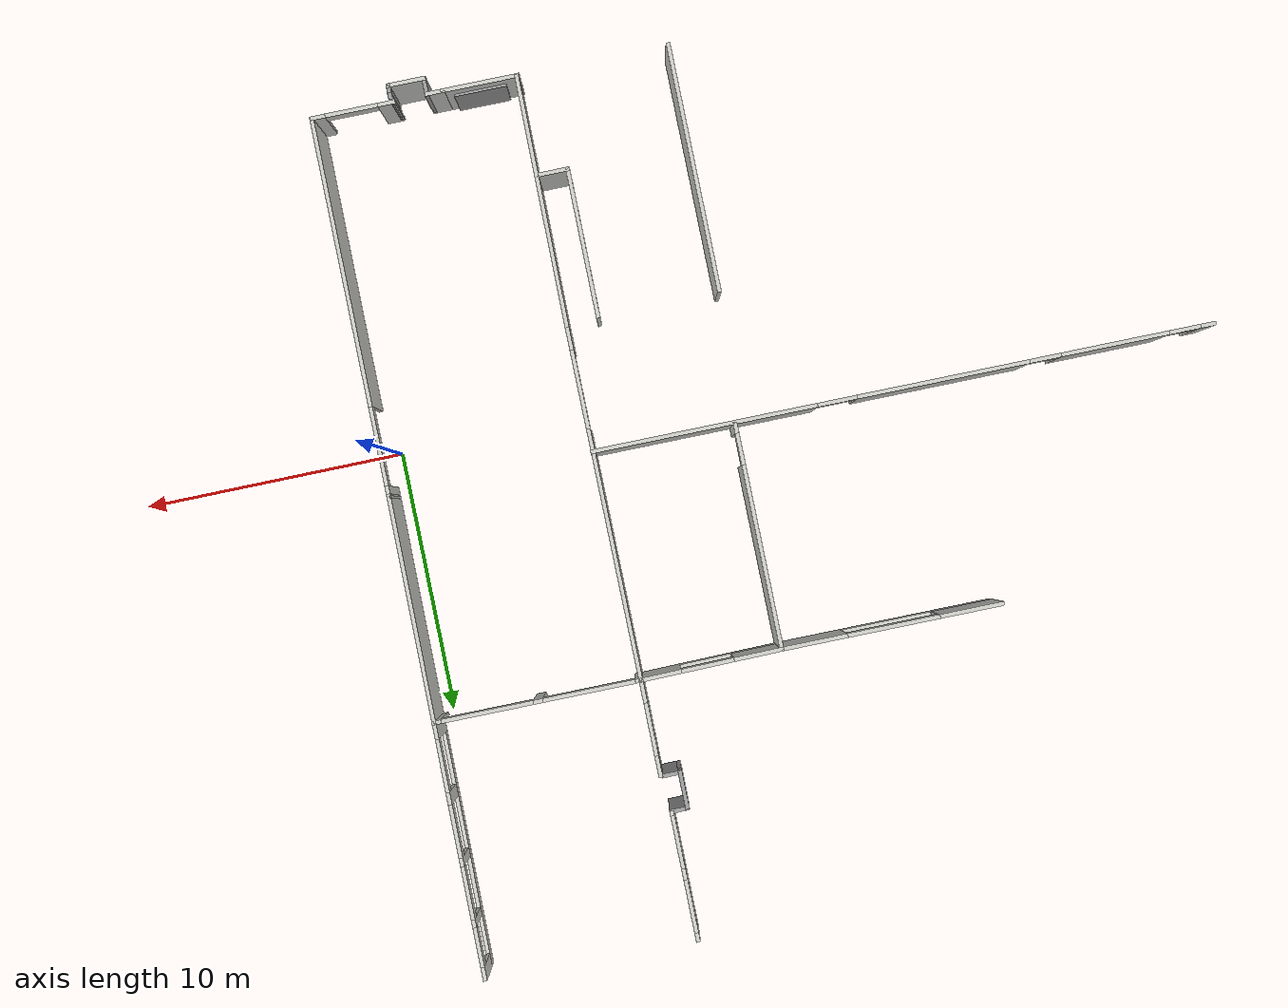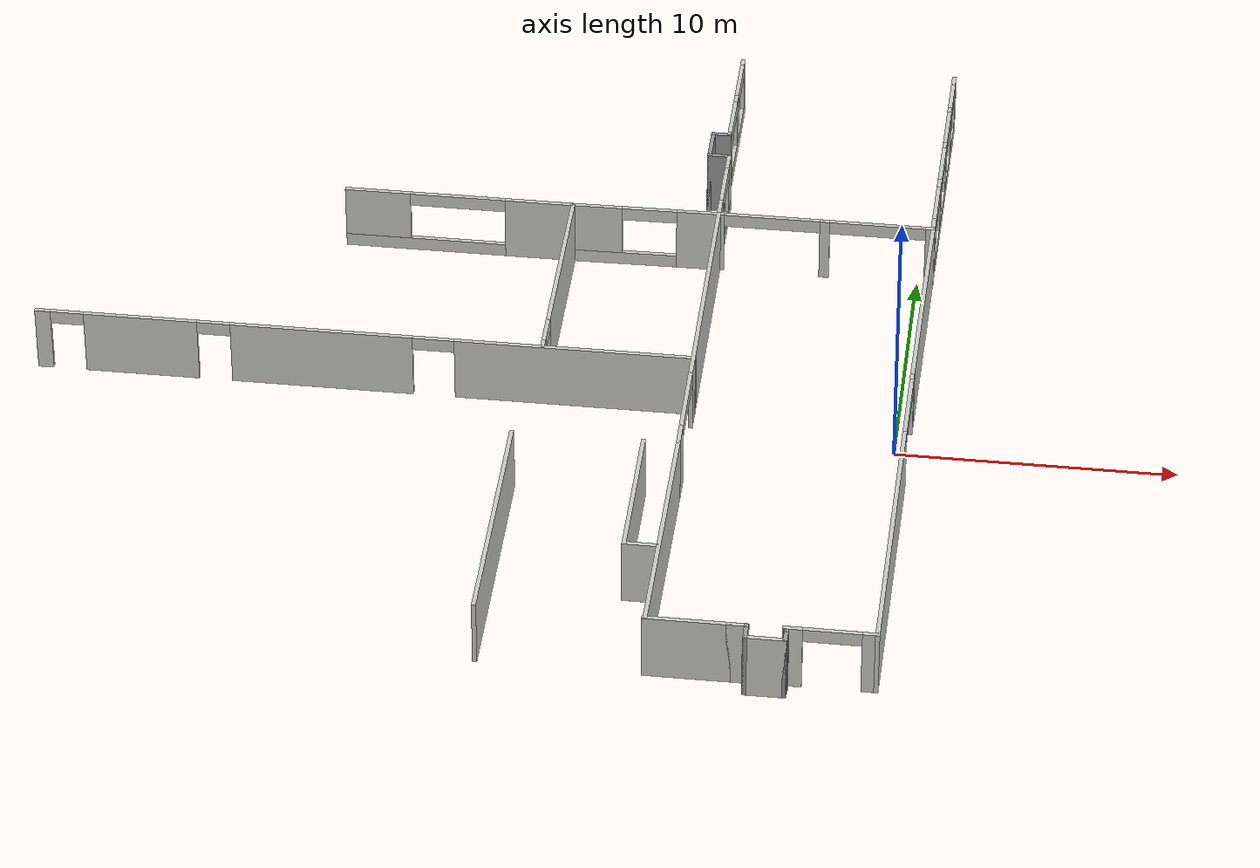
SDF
<sdf version="1.7">
 <model name="cps_lab_layout">
  <pose>-18.5957 3.28943 0 0 -0 0</pose>
  <link name="Door_24">
   <collision name="Door_24_Collision">
    <geometry><box><size>2 0.17 2</size></box></geometry>
    <pose>0 0 1 0 -0 0</pose>
   </collision>
   <visual name="Door_24_Visual">
    <pose>0 0 1 0 -0 0</pose>
    <geometry><box><size>2 0.17 2</size></box></geometry>
    <material>
     <script><uri>file://media/materials/scripts/gazebo.material</uri><name>Gazebo/Grey</name></script>
    </material>
   </visual>
   <pose>12.706 -16.0168 0 0 -0 0</pose>
  </link>
  <link name="Wall_182">
   <collision name="Wall_182_Collision">
    <geometry><box><size>5.75 0.15 2.5</size></box></geometry>
    <pose>0 0 1.25 0 -0 0</pose>
   </collision>
   <visual name="Wall_182_Visual">
    <pose>0 0 1.25 0 -0 0</pose>
    <geometry><box><size>5.75 0.15 2.5</size></box></geometry>
    <material>
     <script><uri>file://media/materials/scripts/gazebo.material</uri><name>Gazebo/CeilingTiled</name></script>
     <ambient>0.760784 0.662745 0.627451 1</ambient>
    </material>
    <meta><layer>0</layer></meta>
   </visual>
   <pose>10.0887 -9.49757 0 0 -0 -1.5708</pose>
  </link>
  <link name="Wall_183">
   <collision name="Wall_183_Collision">
    <geometry><box><size>1.25 0.15 2.5</size></box></geometry>
    <pose>0 0 1.25 0 -0 0</pose>
   </collision>
   <visual name="Wall_183_Visual">
    <pose>0 0 1.25 0 -0 0</pose>
    <geometry><box><size>1.25 0.15 2.5</size></box></geometry>
    <material>
     <script><uri>file://media/materials/scripts/gazebo.material</uri><name>Gazebo/CeilingTiled</name></script>
     <ambient>1 1 1 1</ambient>
    </material>
    <meta><layer>0</layer></meta>
   </visual>
   <pose>10.6387 -12.2976 0 0 -0 0</pose>
  </link>
  <link name="Wall_187">
   <pose>11.2551 8.67058 0 0 -0 1.5708</pose>
   <visual name="Wall_187_Visual_0">
    <pose>-1.40582 0 1.25 0 -0 0</pose>
    <geometry><box><size>0.938352 0.15 2.5</size></box></geometry>
    <material>
     <script><uri>file://media/materials/scripts/gazebo.material</uri><name>Gazebo/CeilingTiled</name></script>
     <ambient>0.760784 0.662745 0.627451 1</ambient>
    </material>
    <meta><layer>0</layer></meta>
   </visual>
   <collision name="Wall_187_Collision_0">
    <geometry><box><size>0.938352 0.15 2.5</size></box></geometry>
    <pose>-1.40582 0 1.25 0 -0 0</pose>
   </collision>
   <visual name="Wall_187_Visual_1">
    <pose>0.469176 0 0.25 0 -0 0</pose>
    <geometry><box><size>2.81165 0.15 0.5</size></box></geometry>
    <material>
     <script><uri>file://media/materials/scripts/gazebo.material</uri><name>Gazebo/CeilingTiled</name></script>
     <ambient>0.760784 0.662745 0.627451 1</ambient>
    </material>
    <meta><layer>0</layer></meta>
   </visual>
   <collision name="Wall_187_Collision_1">
    <geometry><box><size>2.81165 0.15 0.5</size></box></geometry>
    <pose>0.469176 0 0.25 0 -0 0</pose>
   </collision>
   <visual name="Wall_187_Visual_2">
    <pose>1.46918 0 1.5 0 -0 0</pose>
    <geometry><box><size>0.811648 0.15 2</size></box></geometry>
    <material>
     <script><uri>file://media/materials/scripts/gazebo.material</uri><name>Gazebo/CeilingTiled</name></script>
     <ambient>0.760784 0.662745 0.627451 1</ambient>
    </material>
    <meta><layer>0</layer></meta>
   </visual>
   <collision name="Wall_187_Collision_2">
    <geometry><box><size>0.811648 0.15 2</size></box></geometry>
    <pose>1.46918 0 1.5 0 -0 0</pose>
   </collision>
   <visual name="Wall_187_Visual_3">
    <pose>0.063352 0 2.25 0 -0 0</pose>
    <geometry><box><size>2 0.15 0.5</size></box></geometry>
    <material>
     <script><uri>file://media/materials/scripts/gazebo.material</uri><name>Gazebo/CeilingTiled</name></script>
     <ambient>0.760784 0.662745 0.627451 1</ambient>
    </material>
    <meta><layer>0</layer></meta>
   </visual>
   <collision name="Wall_187_Collision_3">
    <geometry><box><size>2 0.15 0.5</size></box></geometry>
    <pose>0.063352 0 2.25 0 -0 0</pose>
   </collision>
  </link>
  <link name="Wall_189">
   <pose>19.097 7.40162 0 0 -0 1.56605</pose>
   <visual name="Wall_189_Visual_0">
    <pose>-4.54614 0 1.25 0 -0 0</pose>
    <geometry><box><size>9.29104 0.15 2.5</size></box></geometry>
    <material>
     <script><uri>file://media/materials/scripts/gazebo.material</uri><name>Gazebo/CeilingTiled</name></script>
     <ambient>0.760784 0.662745 0.627451 1</ambient>
    </material>
    <meta><layer>0</layer></meta>
   </visual>
   <collision name="Wall_189_Collision_0">
    <geometry><box><size>9.29104 0.15 2.5</size></box></geometry>
    <pose>-4.54614 0 1.25 0 -0 0</pose>
   </collision>
   <visual name="Wall_189_Visual_1">
    <pose>4.64552 0 0.25 0 -0 0</pose>
    <geometry><box><size>9.09228 0.15 0.5</size></box></geometry>
    <material>
     <script><uri>file://media/materials/scripts/gazebo.material</uri><name>Gazebo/CeilingTiled</name></script>
     <ambient>0.760784 0.662745 0.627451 1</ambient>
    </material>
    <meta><layer>0</layer></meta>
   </visual>
   <collision name="Wall_189_Collision_1">
    <geometry><box><size>9.09228 0.15 0.5</size></box></geometry>
    <pose>4.64552 0 0.25 0 -0 0</pose>
   </collision>
   <visual name="Wall_189_Visual_2">
    <pose>2.33247 0 1.5 0 -0 0</pose>
    <geometry><box><size>0.466181 0.15 2</size></box></geometry>
    <material>
     <script><uri>file://media/materials/scripts/gazebo.material</uri><name>Gazebo/CeilingTiled</name></script>
     <ambient>0.760784 0.662745 0.627451 1</ambient>
    </material>
    <meta><layer>0</layer></meta>
   </visual>
   <collision name="Wall_189_Collision_2">
    <geometry><box><size>0.466181 0.15 2</size></box></geometry>
    <pose>2.33247 0 1.5 0 -0 0</pose>
   </collision>
   <visual name="Wall_189_Visual_3">
    <pose>4.72865 0 1.5 0 -0 0</pose>
    <geometry><box><size>0.32617 0.15 2</size></box></geometry>
    <material>
     <script><uri>file://media/materials/scripts/gazebo.material</uri><name>Gazebo/CeilingTiled</name></script>
     <ambient>0.760784 0.662745 0.627451 1</ambient>
    </material>
    <meta><layer>0</layer></meta>
   </visual>
   <collision name="Wall_189_Collision_3">
    <geometry><box><size>0.32617 0.15 2</size></box></geometry>
    <pose>4.72865 0 1.5 0 -0 0</pose>
   </collision>
   <visual name="Wall_189_Visual_4">
    <pose>7.04047 0 1.5 0 -0 0</pose>
    <geometry><box><size>0.29747 0.15 2</size></box></geometry>
    <material>
     <script><uri>file://media/materials/scripts/gazebo.material</uri><name>Gazebo/CeilingTiled</name></script>
     <ambient>0.760784 0.662745 0.627451 1</ambient>
    </material>
    <meta><layer>0</layer></meta>
   </visual>
   <collision name="Wall_189_Collision_4">
    <geometry><box><size>0.29747 0.15 2</size></box></geometry>
    <pose>7.04047 0 1.5 0 -0 0</pose>
   </collision>
   <visual name="Wall_189_Visual_5">
    <pose>8.94043 0 1.5 0 -0 0</pose>
    <geometry><box><size>0.502461 0.15 2</size></box></geometry>
    <material>
     <script><uri>file://media/materials/scripts/gazebo.material</uri><name>Gazebo/CeilingTiled</name></script>
     <ambient>0.760784 0.662745 0.627451 1</ambient>
    </material>
    <meta><layer>0</layer></meta>
   </visual>
   <collision name="Wall_189_Collision_5">
    <geometry><box><size>0.502461 0.15 2</size></box></geometry>
    <pose>8.94043 0 1.5 0 -0 0</pose>
   </collision>
   <visual name="Wall_189_Visual_6">
    <pose>1.09938 0 2.25 0 -0 0</pose>
    <geometry><box><size>2 0.15 0.5</size></box></geometry>
    <material>
     <script><uri>file://media/materials/scripts/gazebo.material</uri><name>Gazebo/CeilingTiled</name></script>
     <ambient>0.760784 0.662745 0.627451 1</ambient>
    </material>
    <meta><layer>0</layer></meta>
   </visual>
   <collision name="Wall_189_Collision_6">
    <geometry><box><size>2 0.15 0.5</size></box></geometry>
    <pose>1.09938 0 2.25 0 -0 0</pose>
   </collision>
   <visual name="Wall_189_Visual_7">
    <pose>3.56556 0 2.25 0 -0 0</pose>
    <geometry><box><size>2 0.15 0.5</size></box></geometry>
    <material>
     <script><uri>file://media/materials/scripts/gazebo.material</uri><name>Gazebo/CeilingTiled</name></script>
     <ambient>0.760784 0.662745 0.627451 1</ambient>
    </material>
    <meta><layer>0</layer></meta>
   </visual>
   <collision name="Wall_189_Collision_7">
    <geometry><box><size>2 0.15 0.5</size></box></geometry>
    <pose>3.56556 0 2.25 0 -0 0</pose>
   </collision>
   <visual name="Wall_189_Visual_8">
    <pose>5.89173 0 2.25 0 -0 0</pose>
    <geometry><box><size>2 0.15 0.5</size></box></geometry>
    <material>
     <script><uri>file://media/materials/scripts/gazebo.material</uri><name>Gazebo/CeilingTiled</name></script>
     <ambient>0.760784 0.662745 0.627451 1</ambient>
    </material>
    <meta><layer>0</layer></meta>
   </visual>
   <collision name="Wall_189_Collision_8">
    <geometry><box><size>2 0.15 0.5</size></box></geometry>
    <pose>5.89173 0 2.25 0 -0 0</pose>
   </collision>
   <visual name="Wall_189_Visual_9">
    <pose>7.9392 0 2.25 0 -0 0</pose>
    <geometry><box><size>1.5 0.15 0.5</size></box></geometry>
    <material>
     <script><uri>file://media/materials/scripts/gazebo.material</uri><name>Gazebo/CeilingTiled</name></script>
     <ambient>0.760784 0.662745 0.627451 1</ambient>
    </material>
    <meta><layer>0</layer></meta>
   </visual>
   <collision name="Wall_189_Collision_9">
    <geometry><box><size>1.5 0.15 0.5</size></box></geometry>
    <pose>7.9392 0 2.25 0 -0 0</pose>
   </collision>
  </link>
  <link name="Wall_191">
   <pose>-0.494925 -1.79978 0 0 -0 0</pose>
   <visual name="Wall_191_Visual_0">
    <pose>-11.5937 0 1.25 0 -0 0</pose>
    <geometry><box><size>0.562682 0.15 2.5</size></box></geometry>
    <material>
     <script><uri>file://media/materials/scripts/gazebo.material</uri><name>Gazebo/CeilingTiled</name></script>
     <ambient>0.760784 0.662745 0.627451 1</ambient>
    </material>
    <meta><layer>0</layer></meta>
   </visual>
   <collision name="Wall_191_Collision_0">
    <geometry><box><size>0.562682 0.15 2.5</size></box></geometry>
    <pose>-11.5937 0 1.25 0 -0 0</pose>
   </collision>
   <visual name="Wall_191_Visual_1">
    <pose>-8.06045 0 1.25 0 -0 0</pose>
    <geometry><box><size>4.10373 0.15 2.5</size></box></geometry>
    <material>
     <script><uri>file://media/materials/scripts/gazebo.material</uri><name>Gazebo/CeilingTiled</name></script>
     <ambient>0.760784 0.662745 0.627451 1</ambient>
    </material>
    <meta><layer>0</layer></meta>
   </visual>
   <collision name="Wall_191_Collision_1">
    <geometry><box><size>4.10373 0.15 2.5</size></box></geometry>
    <pose>-8.06045 0 1.25 0 -0 0</pose>
   </collision>
   <visual name="Wall_191_Visual_2">
    <pose>-1.52906 0 1.25 0 -0 0</pose>
    <geometry><box><size>6.55907 0.15 2.5</size></box></geometry>
    <material>
     <script><uri>file://media/materials/scripts/gazebo.material</uri><name>Gazebo/CeilingTiled</name></script>
     <ambient>0.760784 0.662745 0.627451 1</ambient>
    </material>
    <meta><layer>0</layer></meta>
   </visual>
   <collision name="Wall_191_Collision_2">
    <geometry><box><size>6.55907 0.15 2.5</size></box></geometry>
    <pose>-1.52906 0 1.25 0 -0 0</pose>
   </collision>
   <visual name="Wall_191_Visual_3">
    <pose>7.56274 0 1.25 0 -0 0</pose>
    <geometry><box><size>8.62453 0.15 2.5</size></box></geometry>
    <material>
     <script><uri>file://media/materials/scripts/gazebo.material</uri><name>Gazebo/CeilingTiled</name></script>
     <ambient>0.760784 0.662745 0.627451 1</ambient>
    </material>
    <meta><layer>0</layer></meta>
   </visual>
   <collision name="Wall_191_Collision_3">
    <geometry><box><size>8.62453 0.15 2.5</size></box></geometry>
    <pose>7.56274 0 1.25 0 -0 0</pose>
   </collision>
   <visual name="Wall_191_Visual_4">
    <pose>-10.7123 0 2.25 0 -0 0</pose>
    <geometry><box><size>1.2 0.15 0.5</size></box></geometry>
    <material>
     <script><uri>file://media/materials/scripts/gazebo.material</uri><name>Gazebo/CeilingTiled</name></script>
     <ambient>0.760784 0.662745 0.627451 1</ambient>
    </material>
    <meta><layer>0</layer></meta>
   </visual>
   <collision name="Wall_191_Collision_4">
    <geometry><box><size>1.2 0.15 0.5</size></box></geometry>
    <pose>-10.7123 0 2.25 0 -0 0</pose>
   </collision>
   <visual name="Wall_191_Visual_5">
    <pose>-5.40859 0 2.25 0 -0 0</pose>
    <geometry><box><size>1.2 0.15 0.5</size></box></geometry>
    <material>
     <script><uri>file://media/materials/scripts/gazebo.material</uri><name>Gazebo/CeilingTiled</name></script>
     <ambient>0.760784 0.662745 0.627451 1</ambient>
    </material>
    <meta><layer>0</layer></meta>
   </visual>
   <collision name="Wall_191_Collision_5">
    <geometry><box><size>1.2 0.15 0.5</size></box></geometry>
    <pose>-5.40859 0 2.25 0 -0 0</pose>
   </collision>
   <visual name="Wall_191_Visual_6">
    <pose>2.50047 0 2.25 0 -0 0</pose>
    <geometry><box><size>1.5 0.15 0.5</size></box></geometry>
    <material>
     <script><uri>file://media/materials/scripts/gazebo.material</uri><name>Gazebo/CeilingTiled</name></script>
     <ambient>0.760784 0.662745 0.627451 1</ambient>
    </material>
    <meta><layer>0</layer></meta>
   </visual>
   <collision name="Wall_191_Collision_6">
    <geometry><box><size>1.5 0.15 0.5</size></box></geometry>
    <pose>2.50047 0 2.25 0 -0 0</pose>
   </collision>
  </link>
  <link name="Wall_193">
   <pose>15.1801 6.87058 0 0 -0 0</pose>
   <visual name="Wall_193_Visual_0">
    <pose>-3.85613 0 1.25 0 -0 0</pose>
    <geometry><box><size>0.287735 0.15 2.5</size></box></geometry>
    <material>
     <script><uri>file://media/materials/scripts/gazebo.material</uri><name>Gazebo/CeilingTiled</name></script>
     <ambient>0.760784 0.662745 0.627451 1</ambient>
    </material>
    <meta><layer>0</layer></meta>
   </visual>
   <collision name="Wall_193_Collision_0">
    <geometry><box><size>0.287735 0.15 2.5</size></box></geometry>
    <pose>-3.85613 0 1.25 0 -0 0</pose>
   </collision>
   <visual name="Wall_193_Visual_1">
    <pose>-0.031522 0 1.25 0 -0 0</pose>
    <geometry><box><size>0.361485 0.15 2.5</size></box></geometry>
    <material>
     <script><uri>file://media/materials/scripts/gazebo.material</uri><name>Gazebo/CeilingTiled</name></script>
     <ambient>0.760784 0.662745 0.627451 1</ambient>
    </material>
    <meta><layer>0</layer></meta>
   </visual>
   <collision name="Wall_193_Collision_1">
    <geometry><box><size>0.361485 0.15 2.5</size></box></geometry>
    <pose>-0.031522 0 1.25 0 -0 0</pose>
   </collision>
   <visual name="Wall_193_Visual_2">
    <pose>3.82461 0 1.25 0 -0 0</pose>
    <geometry><box><size>0.35078 0.15 2.5</size></box></geometry>
    <material>
     <script><uri>file://media/materials/scripts/gazebo.material</uri><name>Gazebo/CeilingTiled</name></script>
     <ambient>0.760784 0.662745 0.627451 1</ambient>
    </material>
    <meta><layer>0</layer></meta>
   </visual>
   <collision name="Wall_193_Collision_2">
    <geometry><box><size>0.35078 0.15 2.5</size></box></geometry>
    <pose>3.82461 0 1.25 0 -0 0</pose>
   </collision>
   <visual name="Wall_193_Visual_3">
    <pose>-1.96226 0 2.25 0 -0 0</pose>
    <geometry><box><size>3.5 0.15 0.5</size></box></geometry>
    <material>
     <script><uri>file://media/materials/scripts/gazebo.material</uri><name>Gazebo/CeilingTiled</name></script>
     <ambient>0.760784 0.662745 0.627451 1</ambient>
    </material>
    <meta><layer>0</layer></meta>
   </visual>
   <collision name="Wall_193_Collision_3">
    <geometry><box><size>3.5 0.15 0.5</size></box></geometry>
    <pose>-1.96226 0 2.25 0 -0 0</pose>
   </collision>
   <visual name="Wall_193_Visual_4">
    <pose>1.89922 0 2.25 0 -0 0</pose>
    <geometry><box><size>3.5 0.15 0.5</size></box></geometry>
    <material>
     <script><uri>file://media/materials/scripts/gazebo.material</uri><name>Gazebo/CeilingTiled</name></script>
     <ambient>0.760784 0.662745 0.627451 1</ambient>
    </material>
    <meta><layer>0</layer></meta>
   </visual>
   <collision name="Wall_193_Collision_4">
    <geometry><box><size>3.5 0.15 0.5</size></box></geometry>
    <pose>1.89922 0 2.25 0 -0 0</pose>
   </collision>
  </link>
  <link name="Wall_197">
   <collision name="Wall_197_Collision">
    <geometry><box><size>0.75 0.15 2.5</size></box></geometry>
    <pose>0 0 1.25 0 -0 0</pose>
   </collision>
   <visual name="Wall_197_Visual">
    <pose>0 0 1.25 0 -0 0</pose>
    <geometry><box><size>0.75 0.15 2.5</size></box></geometry>
    <material>
     <script><uri>file://media/materials/scripts/gazebo.material</uri><name>Gazebo/Grey</name></script>
     <ambient>1 1 1 1</ambient>
    </material>
    <meta><layer>0</layer></meta>
   </visual>
   <pose>10.8242 11.851 0 0 -0 3.14159</pose>
  </link>
  <link name="Wall_198">
   <collision name="Wall_198_Collision">
    <geometry><box><size>1.5 0.15 2.5</size></box></geometry>
    <pose>0 0 1.25 0 -0 0</pose>
   </collision>
   <visual name="Wall_198_Visual">
    <pose>0 0 1.25 0 -0 0</pose>
    <geometry><box><size>1.5 0.15 2.5</size></box></geometry>
    <material>
     <script><uri>file://media/materials/scripts/gazebo.material</uri><name>Gazebo/Grey</name></script>
     <ambient>1 1 1 1</ambient>
    </material>
    <meta><layer>0</layer></meta>
   </visual>
   <pose>10.5242 11.176 0 0 -0 -1.5708</pose>
  </link>
  <link name="Wall_199">
   <collision name="Wall_199_Collision">
    <geometry><box><size>0.75 0.15 2.5</size></box></geometry>
    <pose>0 0 1.25 0 -0 0</pose>
   </collision>
   <visual name="Wall_199_Visual">
    <pose>0 0 1.25 0 -0 0</pose>
    <geometry><box><size>0.75 0.15 2.5</size></box></geometry>
    <material>
     <script><uri>file://media/materials/scripts/gazebo.material</uri><name>Gazebo/Grey</name></script>
     <ambient>1 1 1 1</ambient>
    </material>
    <meta><layer>0</layer></meta>
   </visual>
   <pose>10.8242 10.501 0 0 -0 0</pose>
  </link>
  <link name="Wall_201">
   <pose>11.1242 14.276 0 0 -0 1.5708</pose>
   <visual name="Wall_201_Visual_0">
    <pose>-2.38095 0 1.25 0 -0 0</pose>
    <geometry><box><size>0.238098 0.15 2.5</size></box></geometry>
    <material>
     <script><uri>file://media/materials/scripts/gazebo.material</uri><name>Gazebo/CeilingTiled</name></script>
     <ambient>0.760784 0.662745 0.627451 1</ambient>
    </material>
    <meta><layer>0</layer></meta>
   </visual>
   <collision name="Wall_201_Collision_0">
    <geometry><box><size>0.238098 0.15 2.5</size></box></geometry>
    <pose>-2.38095 0 1.25 0 -0 0</pose>
   </collision>
   <visual name="Wall_201_Visual_1">
    <pose>0.119049 0 0.25 0 -0 0</pose>
    <geometry><box><size>4.7619 0.15 0.5</size></box></geometry>
    <material>
     <script><uri>file://media/materials/scripts/gazebo.material</uri><name>Gazebo/CeilingTiled</name></script>
     <ambient>0.760784 0.662745 0.627451 1</ambient>
    </material>
    <meta><layer>0</layer></meta>
   </visual>
   <collision name="Wall_201_Collision_1">
    <geometry><box><size>4.7619 0.15 0.5</size></box></geometry>
    <pose>0.119049 0 0.25 0 -0 0</pose>
   </collision>
   <visual name="Wall_201_Visual_2">
    <pose>-0.05228 0 1.5 0 -0 0</pose>
    <geometry><box><size>0.419243 0.15 2</size></box></geometry>
    <material>
     <script><uri>file://media/materials/scripts/gazebo.material</uri><name>Gazebo/CeilingTiled</name></script>
     <ambient>0.760784 0.662745 0.627451 1</ambient>
    </material>
    <meta><layer>0</layer></meta>
   </visual>
   <collision name="Wall_201_Collision_2">
    <geometry><box><size>0.419243 0.15 2</size></box></geometry>
    <pose>-0.05228 0 1.5 0 -0 0</pose>
   </collision>
   <visual name="Wall_201_Visual_3">
    <pose>2.32867 0 1.5 0 -0 0</pose>
    <geometry><box><size>0.342659 0.15 2</size></box></geometry>
    <material>
     <script><uri>file://media/materials/scripts/gazebo.material</uri><name>Gazebo/CeilingTiled</name></script>
     <ambient>0.760784 0.662745 0.627451 1</ambient>
    </material>
    <meta><layer>0</layer></meta>
   </visual>
   <collision name="Wall_201_Collision_3">
    <geometry><box><size>0.342659 0.15 2</size></box></geometry>
    <pose>2.32867 0 1.5 0 -0 0</pose>
   </collision>
   <visual name="Wall_201_Visual_4">
    <pose>-1.2619 0 2.25 0 -0 0</pose>
    <geometry><box><size>2 0.15 0.5</size></box></geometry>
    <material>
     <script><uri>file://media/materials/scripts/gazebo.material</uri><name>Gazebo/CeilingTiled</name></script>
     <ambient>0.760784 0.662745 0.627451 1</ambient>
    </material>
    <meta><layer>0</layer></meta>
   </visual>
   <collision name="Wall_201_Collision_4">
    <geometry><box><size>2 0.15 0.5</size></box></geometry>
    <pose>-1.2619 0 2.25 0 -0 0</pose>
   </collision>
   <visual name="Wall_201_Visual_5">
    <pose>1.15734 0 2.25 0 -0 0</pose>
    <geometry><box><size>2 0.15 0.5</size></box></geometry>
    <material>
     <script><uri>file://media/materials/scripts/gazebo.material</uri><name>Gazebo/CeilingTiled</name></script>
     <ambient>0.760784 0.662745 0.627451 1</ambient>
    </material>
    <meta><layer>0</layer></meta>
   </visual>
   <collision name="Wall_201_Collision_5">
    <geometry><box><size>2 0.15 0.5</size></box></geometry>
    <pose>1.15734 0 2.25 0 -0 0</pose>
   </collision>
  </link>
  <link name="Wall_203">
   <collision name="Wall_203_Collision">
    <geometry><box><size>3 0.15 2.5</size></box></geometry>
    <pose>0 0 1.25 0 -0 0</pose>
   </collision>
   <visual name="Wall_203_Visual">
    <pose>0 0 1.25 0 -0 0</pose>
    <geometry><box><size>3 0.15 2.5</size></box></geometry>
    <material>
     <script><uri>file://media/materials/scripts/gazebo.material</uri><name>Gazebo/CeilingTiled</name></script>
     <ambient>0.760784 0.662745 0.627451 1</ambient>
    </material>
    <meta><layer>0</layer></meta>
   </visual>
   <pose>12.6417 -16.101 0 0 -0 0</pose>
  </link>
  <link name="Wall_210">
   <collision name="Wall_210_Collision">
    <geometry><box><size>0.75 0.15 2.5</size></box></geometry>
    <pose>0 0 1.25 0 -0 0</pose>
   </collision>
   <visual name="Wall_210_Visual">
    <pose>0 0 1.25 0 -0 0</pose>
    <geometry><box><size>0.75 0.15 2.5</size></box></geometry>
    <material>
     <script><uri>file://media/materials/scripts/gazebo.material</uri><name>Gazebo/CeilingTiled</name></script>
     <ambient>0.760784 0.662745 0.627451 1</ambient>
    </material>
    <meta><layer>0</layer></meta>
   </visual>
   <pose>14.3667 -16.101 0 0 -0 0</pose>
  </link>
  <link name="Wall_211">
   <collision name="Wall_211_Collision">
    <geometry><box><size>0.75 0.15 2.5</size></box></geometry>
    <pose>0 0 1.25 0 -0 0</pose>
   </collision>
   <visual name="Wall_211_Visual">
    <pose>0 0 1.25 0 -0 0</pose>
    <geometry><box><size>0.75 0.15 2.5</size></box></geometry>
    <material>
     <script><uri>file://media/materials/scripts/gazebo.material</uri><name>Gazebo/Grey</name></script>
     <ambient>1 1 1 1</ambient>
    </material>
    <meta><layer>0</layer></meta>
   </visual>
   <pose>14.6667 -16.401 0 0 -0 -1.5708</pose>
  </link>
  <link name="Wall_212">
   <collision name="Wall_212_Collision">
    <geometry><box><size>1.5 0.15 2.5</size></box></geometry>
    <pose>0 0 1.25 0 -0 0</pose>
   </collision>
   <visual name="Wall_212_Visual">
    <pose>0 0 1.25 0 -0 0</pose>
    <geometry><box><size>1.5 0.15 2.5</size></box></geometry>
    <material>
     <script><uri>file://media/materials/scripts/gazebo.material</uri><name>Gazebo/CeilingTiled</name></script>
     <ambient>0.760784 0.662745 0.627451 1</ambient>
    </material>
    <meta><layer>0</layer></meta>
   </visual>
   <pose>15.3417 -16.701 0 0 -0 0</pose>
  </link>
  <link name="Wall_213">
   <collision name="Wall_213_Collision">
    <geometry><box><size>0.5 0.15 2.5</size></box></geometry>
    <pose>0 0 1.25 0 -0 0</pose>
   </collision>
   <visual name="Wall_213_Visual">
    <pose>0 0 1.25 0 -0 0</pose>
    <geometry><box><size>0.5 0.15 2.5</size></box></geometry>
    <material>
     <script><uri>file://media/materials/scripts/gazebo.material</uri><name>Gazebo/Grey</name></script>
     <ambient>1 1 1 1</ambient>
    </material>
    <meta><layer>0</layer></meta>
   </visual>
   <pose>16.0167 -16.526 0 0 -0 1.5708</pose>
  </link>
  <link name="Wall_214">
   <collision name="Wall_214_Collision">
    <geometry><box><size>0.25 0.15 2.5</size></box></geometry>
    <pose>0 0 1.25 0 -0 0</pose>
   </collision>
   <visual name="Wall_214_Visual">
    <pose>0 0 1.25 0 -0 0</pose>
    <geometry><box><size>0.25 0.15 2.5</size></box></geometry>
    <material>
     <script><uri>file://media/materials/scripts/gazebo.material</uri><name>Gazebo/Grey</name></script>
     <ambient>1 1 1 1</ambient>
    </material>
    <meta><layer>0</layer></meta>
   </visual>
   <pose>16.0167 -16.301 0 0 -0 1.5708</pose>
  </link>
  <link name="Wall_216">
   <pose>17.5037 -16.0649 0 0 -0 3.14159</pose>
   <visual name="Wall_216_Visual_0">
    <pose>-1.33294 0 1.25 0 -0 0</pose>
    <geometry><box><size>0.584125 0.15 2.5</size></box></geometry>
    <material>
     <script><uri>file://media/materials/scripts/gazebo.material</uri><name>Gazebo/CeilingTiled</name></script>
     <ambient>0.760784 0.662745 0.627451 1</ambient>
    </material>
    <meta><layer>0</layer></meta>
   </visual>
   <collision name="Wall_216_Collision_0">
    <geometry><box><size>0.584125 0.15 2.5</size></box></geometry>
    <pose>-1.33294 0 1.25 0 -0 0</pose>
   </collision>
   <visual name="Wall_216_Visual_1">
    <pose>1.29206 0 1.25 0 -0 0</pose>
    <geometry><box><size>0.665875 0.15 2.5</size></box></geometry>
    <material>
     <script><uri>file://media/materials/scripts/gazebo.material</uri><name>Gazebo/CeilingTiled</name></script>
     <ambient>0.760784 0.662745 0.627451 1</ambient>
    </material>
    <meta><layer>0</layer></meta>
   </visual>
   <collision name="Wall_216_Collision_1">
    <geometry><box><size>0.665875 0.15 2.5</size></box></geometry>
    <pose>1.29206 0 1.25 0 -0 0</pose>
   </collision>
   <visual name="Wall_216_Visual_2">
    <pose>-0.040875 0 2.25 0 -0 0</pose>
    <geometry><box><size>2 0.15 0.5</size></box></geometry>
    <material>
     <script><uri>file://media/materials/scripts/gazebo.material</uri><name>Gazebo/CeilingTiled</name></script>
     <ambient>0.760784 0.662745 0.627451 1</ambient>
    </material>
    <meta><layer>0</layer></meta>
   </visual>
   <collision name="Wall_216_Collision_2">
    <geometry><box><size>2 0.15 0.5</size></box></geometry>
    <pose>-0.040875 0 2.25 0 -0 0</pose>
   </collision>
  </link>
  <link name="Wall_217">
   <collision name="Wall_217_Collision">
    <geometry><box><size>0.442956 0.15 2.5</size></box></geometry>
    <pose>0 0 1.25 0 -0 0</pose>
   </collision>
   <visual name="Wall_217_Visual">
    <pose>0 0 1.25 0 -0 0</pose>
    <geometry><box><size>0.442956 0.15 2.5</size></box></geometry>
    <material>
     <script><uri>file://media/materials/scripts/gazebo.material</uri><name>Gazebo/Grey</name></script>
     <ambient>1 1 1 1</ambient>
    </material>
    <meta><layer>0</layer></meta>
   </visual>
   <pose>15.9852 -16.208 0 0 -0 -1.35395</pose>
  </link>
  <link name="Wall_76">
   <collision name="Wall_76_Collision">
    <geometry><box><size>9.63969 0.15 2.5</size></box></geometry>
    <pose>0 0 1.25 0 -0 0</pose>
   </collision>
   <visual name="Wall_76_Visual">
    <pose>0 0 1.25 0 -0 0</pose>
    <geometry><box><size>9.63969 0.15 2.5</size></box></geometry>
    <material>
     <script><uri>file://media/materials/scripts/gazebo.material</uri><name>Gazebo/CeilingTiled</name></script>
     <ambient>0.760784 0.662745 0.627451 1</ambient>
    </material>
    <meta><layer>0</layer></meta>
   </visual>
   <pose>11.2783 -11.3346 0 0 -0 -1.5757</pose>
  </link>
  <link name="Wall_77">
   <pose>19.0537 -8.88994 0 0 -0 1.5708</pose>
   <visual name="Wall_77_Visual_0">
    <pose>-1.72755 0 1.25 0 -0 0</pose>
    <geometry><box><size>11.0449 0.15 2.5</size></box></geometry>
    <material>
     <script><uri>file://media/materials/scripts/gazebo.material</uri><name>Gazebo/CeilingTiled</name></script>
     <ambient>0.760784 0.662745 0.627451 1</ambient>
    </material>
    <meta><layer>0</layer></meta>
   </visual>
   <collision name="Wall_77_Collision_0">
    <geometry><box><size>11.0449 0.15 2.5</size></box></geometry>
    <pose>-1.72755 0 1.25 0 -0 0</pose>
   </collision>
   <visual name="Wall_77_Visual_1">
    <pose>7.02245 0 1.25 0 -0 0</pose>
    <geometry><box><size>0.455102 0.15 2.5</size></box></geometry>
    <material>
     <script><uri>file://media/materials/scripts/gazebo.material</uri><name>Gazebo/CeilingTiled</name></script>
     <ambient>0.760784 0.662745 0.627451 1</ambient>
    </material>
    <meta><layer>0</layer></meta>
   </visual>
   <collision name="Wall_77_Collision_1">
    <geometry><box><size>0.455102 0.15 2.5</size></box></geometry>
    <pose>7.02245 0 1.25 0 -0 0</pose>
   </collision>
   <visual name="Wall_77_Visual_2">
    <pose>5.2949 0 2.25 0 -0 0</pose>
    <geometry><box><size>3 0.15 0.5</size></box></geometry>
    <material>
     <script><uri>file://media/materials/scripts/gazebo.material</uri><name>Gazebo/CeilingTiled</name></script>
     <ambient>0.760784 0.662745 0.627451 1</ambient>
    </material>
    <meta><layer>0</layer></meta>
   </visual>
   <collision name="Wall_77_Collision_2">
    <geometry><box><size>3 0.15 0.5</size></box></geometry>
    <pose>5.2949 0 2.25 0 -0 0</pose>
   </collision>
  </link>
  <link name="Wall_80">
   <collision name="Wall_80_Collision">
    <geometry><box><size>9.5 0.15 2.5</size></box></geometry>
    <pose>0 0 1.25 0 -0 0</pose>
   </collision>
   <visual name="Wall_80_Visual">
    <pose>0 0 1.25 0 -0 0</pose>
    <geometry><box><size>9.5 0.15 2.5</size></box></geometry>
    <material>
     <script><uri>file://media/materials/scripts/gazebo.material</uri><name>Gazebo/CeilingTiled</name></script>
     <ambient>0.760784 0.662745 0.627451 1</ambient>
    </material>
    <meta><layer>0</layer></meta>
   </visual>
   <pose>5.48031 -11.4153 0 0 -0 1.5708</pose>
  </link>
  <link name="Wall_91">
   <pose>11.2783 0.140367 0 0 -0 1.57425</pose>
   <visual name="Wall_91_Visual_0">
    <pose>-6.30077 0 1.25 0 -0 0</pose>
    <geometry><box><size>1.00896 0.15 2.5</size></box></geometry>
    <material>
     <script><uri>file://media/materials/scripts/gazebo.material</uri><name>Gazebo/CeilingTiled</name></script>
     <ambient>0.760784 0.662745 0.627451 1</ambient>
    </material>
    <meta><layer>0</layer></meta>
   </visual>
   <collision name="Wall_91_Collision_0">
    <geometry><box><size>1.00896 0.15 2.5</size></box></geometry>
    <pose>-6.30077 0 1.25 0 -0 0</pose>
   </collision>
   <visual name="Wall_91_Visual_1">
    <pose>2.00448 0 1.25 0 -0 0</pose>
    <geometry><box><size>9.60155 0.15 2.5</size></box></geometry>
    <material>
     <script><uri>file://media/materials/scripts/gazebo.material</uri><name>Gazebo/CeilingTiled</name></script>
     <ambient>0.760784 0.662745 0.627451 1</ambient>
    </material>
    <meta><layer>0</layer></meta>
   </visual>
   <collision name="Wall_91_Collision_1">
    <geometry><box><size>9.60155 0.15 2.5</size></box></geometry>
    <pose>2.00448 0 1.25 0 -0 0</pose>
   </collision>
   <visual name="Wall_91_Visual_2">
    <pose>-4.29629 0 2.25 0 -0 0</pose>
    <geometry><box><size>3 0.15 0.5</size></box></geometry>
    <material>
     <script><uri>file://media/materials/scripts/gazebo.material</uri><name>Gazebo/CeilingTiled</name></script>
     <ambient>0.760784 0.662745 0.627451 1</ambient>
    </material>
    <meta><layer>0</layer></meta>
   </visual>
   <collision name="Wall_91_Collision_2">
    <geometry><box><size>3 0.15 0.5</size></box></geometry>
    <pose>-4.29629 0 2.25 0 -0 0</pose>
   </collision>
  </link>
  <link name="Wall_92">
   <pose>8.58008 6.8354 0 0 -0 -3.12844</pose>
   <visual name="Wall_92_Visual_0">
    <pose>-1.94421 0 1.25 0 -0 0</pose>
    <geometry><box><size>1.61204 0.15 2.5</size></box></geometry>
    <material>
     <script><uri>file://media/materials/scripts/gazebo.material</uri><name>Gazebo/CeilingTiled</name></script>
     <ambient>0.760784 0.662745 0.627451 1</ambient>
    </material>
    <meta><layer>0</layer></meta>
   </visual>
   <collision name="Wall_92_Collision_0">
    <geometry><box><size>1.61204 0.15 2.5</size></box></geometry>
    <pose>-1.94421 0 1.25 0 -0 0</pose>
   </collision>
   <visual name="Wall_92_Visual_1">
    <pose>0.806018 0 0.25 0 -0 0</pose>
    <geometry><box><size>3.88843 0.15 0.5</size></box></geometry>
    <material>
     <script><uri>file://media/materials/scripts/gazebo.material</uri><name>Gazebo/CeilingTiled</name></script>
     <ambient>0.760784 0.662745 0.627451 1</ambient>
    </material>
    <meta><layer>0</layer></meta>
   </visual>
   <collision name="Wall_92_Collision_1">
    <geometry><box><size>3.88843 0.15 0.5</size></box></geometry>
    <pose>0.806018 0 0.25 0 -0 0</pose>
   </collision>
   <visual name="Wall_92_Visual_2">
    <pose>1.80602 0 1.5 0 -0 0</pose>
    <geometry><box><size>1.88843 0.15 2</size></box></geometry>
    <material>
     <script><uri>file://media/materials/scripts/gazebo.material</uri><name>Gazebo/CeilingTiled</name></script>
     <ambient>0.760784 0.662745 0.627451 1</ambient>
    </material>
    <meta><layer>0</layer></meta>
   </visual>
   <collision name="Wall_92_Collision_2">
    <geometry><box><size>1.88843 0.15 2</size></box></geometry>
    <pose>1.80602 0 1.5 0 -0 0</pose>
   </collision>
   <visual name="Wall_92_Visual_3">
    <pose>-0.138195 0 2.25 0 -0 0</pose>
    <geometry><box><size>2 0.15 0.5</size></box></geometry>
    <material>
     <script><uri>file://media/materials/scripts/gazebo.material</uri><name>Gazebo/CeilingTiled</name></script>
     <ambient>0.760784 0.662745 0.627451 1</ambient>
    </material>
    <meta><layer>0</layer></meta>
   </visual>
   <collision name="Wall_92_Collision_3">
    <geometry><box><size>2 0.15 0.5</size></box></geometry>
    <pose>-0.138195 0 2.25 0 -0 0</pose>
   </collision>
  </link>
  <link name="Wall_93">
   <pose>5.90508 2.5354 0 0 -0 -1.5708</pose>
   <visual name="Wall_93_Visual_0">
    <pose>-0.808442 0 1.25 0 -0 0</pose>
    <geometry><box><size>7.06276 0.15 2.5</size></box></geometry>
    <material>
     <script><uri>file://media/materials/scripts/gazebo.material</uri><name>Gazebo/CeilingTiled</name></script>
     <ambient>0.760784 0.662745 0.627451 1</ambient>
    </material>
    <meta><layer>0</layer></meta>
   </visual>
   <collision name="Wall_93_Collision_0">
    <geometry><box><size>7.06276 0.15 2.5</size></box></geometry>
    <pose>-0.808442 0 1.25 0 -0 0</pose>
   </collision>
   <visual name="Wall_93_Visual_1">
    <pose>4.13138 0 1.25 0 -0 0</pose>
    <geometry><box><size>0.416883 0.15 2.5</size></box></geometry>
    <material>
     <script><uri>file://media/materials/scripts/gazebo.material</uri><name>Gazebo/CeilingTiled</name></script>
     <ambient>0.760784 0.662745 0.627451 1</ambient>
    </material>
    <meta><layer>0</layer></meta>
   </visual>
   <collision name="Wall_93_Collision_1">
    <geometry><box><size>0.416883 0.15 2.5</size></box></geometry>
    <pose>4.13138 0 1.25 0 -0 0</pose>
   </collision>
   <visual name="Wall_93_Visual_2">
    <pose>3.32294 0 2.25 0 -0 0</pose>
    <geometry><box><size>1.2 0.15 0.5</size></box></geometry>
    <material>
     <script><uri>file://media/materials/scripts/gazebo.material</uri><name>Gazebo/CeilingTiled</name></script>
     <ambient>0.760784 0.662745 0.627451 1</ambient>
    </material>
    <meta><layer>0</layer></meta>
   </visual>
   <collision name="Wall_93_Collision_2">
    <geometry><box><size>1.2 0.15 0.5</size></box></geometry>
    <pose>3.32294 0 2.25 0 -0 0</pose>
   </collision>
  </link>
  <link name="Wall_94">
   <pose>1.73008 6.80022 0 0 -0 3.14159</pose>
   <visual name="Wall_94_Visual_0">
    <pose>-2.95787 0 1.25 0 -0 0</pose>
    <geometry><box><size>2.58426 0.15 2.5</size></box></geometry>
    <material>
     <script><uri>file://media/materials/scripts/gazebo.material</uri><name>Gazebo/CeilingTiled</name></script>
     <ambient>0.760784 0.662745 0.627451 1</ambient>
    </material>
    <meta><layer>0</layer></meta>
   </visual>
   <collision name="Wall_94_Collision_0">
    <geometry><box><size>2.58426 0.15 2.5</size></box></geometry>
    <pose>-2.95787 0 1.25 0 -0 0</pose>
   </collision>
   <visual name="Wall_94_Visual_1">
    <pose>1.29213 0 0.25 0 -0 0</pose>
    <geometry><box><size>5.91574 0.15 0.5</size></box></geometry>
    <material>
     <script><uri>file://media/materials/scripts/gazebo.material</uri><name>Gazebo/CeilingTiled</name></script>
     <ambient>0.760784 0.662745 0.627451 1</ambient>
    </material>
    <meta><layer>0</layer></meta>
   </visual>
   <collision name="Wall_94_Collision_1">
    <geometry><box><size>5.91574 0.15 0.5</size></box></geometry>
    <pose>1.29213 0 0.25 0 -0 0</pose>
   </collision>
   <visual name="Wall_94_Visual_2">
    <pose>3.04213 0 1.5 0 -0 0</pose>
    <geometry><box><size>2.41574 0.15 2</size></box></geometry>
    <material>
     <script><uri>file://media/materials/scripts/gazebo.material</uri><name>Gazebo/CeilingTiled</name></script>
     <ambient>0.760784 0.662745 0.627451 1</ambient>
    </material>
    <meta><layer>0</layer></meta>
   </visual>
   <collision name="Wall_94_Collision_2">
    <geometry><box><size>2.41574 0.15 2</size></box></geometry>
    <pose>3.04213 0 1.5 0 -0 0</pose>
   </collision>
   <visual name="Wall_94_Visual_3">
    <pose>0.084257 0 2.25 0 -0 0</pose>
    <geometry><box><size>3.5 0.15 0.5</size></box></geometry>
    <material>
     <script><uri>file://media/materials/scripts/gazebo.material</uri><name>Gazebo/CeilingTiled</name></script>
     <ambient>0.760784 0.662745 0.627451 1</ambient>
    </material>
    <meta><layer>0</layer></meta>
   </visual>
   <collision name="Wall_94_Collision_3">
    <geometry><box><size>3.5 0.15 0.5</size></box></geometry>
    <pose>0.084257 0 2.25 0 -0 0</pose>
   </collision>
  </link>
  <static>1</static>
 </model>
</sdf>
